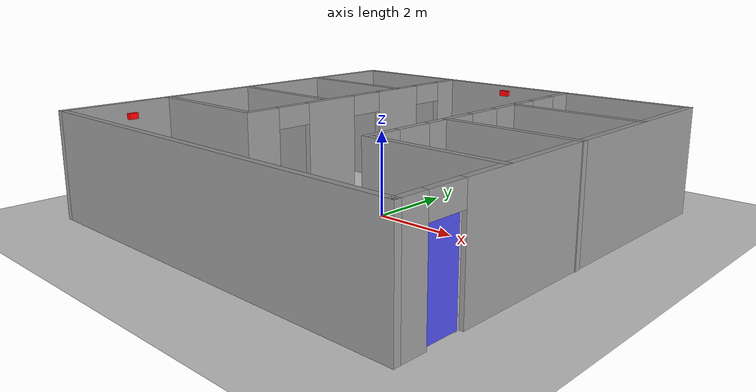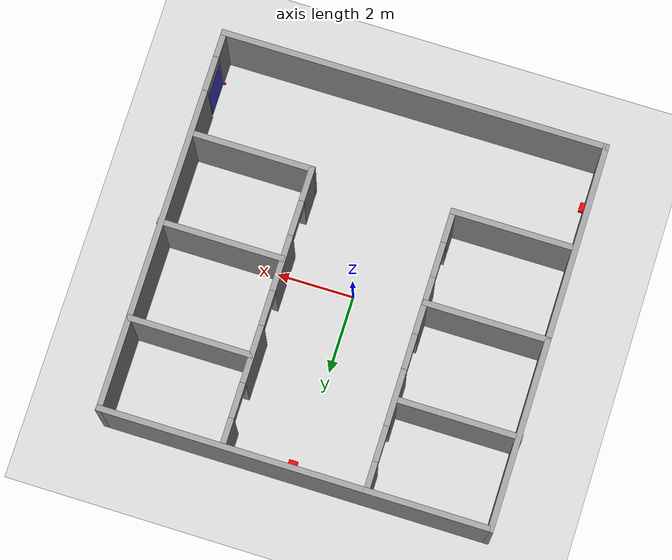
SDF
<sdf version="1.7">
 <world name="default">
  <light name="sun" type="directional">
   <pose>0 0 10 0 -0 0</pose>
   <diffuse>0.8 0.8 0.8 1</diffuse>
   <specular>0.2 0.2 0.2 1</specular>
   <attenuation>
    <range>1000</range>
    <constant>0.9</constant>
    <linear>0.01</linear>
    <quadratic>0.001</quadratic>
   </attenuation>
   <direction>-0.5 0.1 -0.9</direction>
   <spot><inner_angle>0</inner_angle><outer_angle>0</outer_angle><falloff>0</falloff></spot>
  </light>
  <model name="ground_plane">
   <static>1</static>
   <link name="link">
    <collision name="collision">
     <geometry><plane><normal>0 0 1</normal><size>100 100</size></plane></geometry>
     <surface><friction><ode><mu>100</mu><mu2>50</mu2></ode></friction></surface>
    </collision>
    <visual name="visual">
     <cast_shadows>0</cast_shadows>
     <geometry><plane><normal>0 0 1</normal><size>100 100</size></plane></geometry>
     <material>
      <script><uri>file://media/materials/scripts/gazebo.material</uri><name>Gazebo/Grey</name></script>
     </material>
    </visual>
   </link>
  </model>
  <gravity>0 0 -9.8</gravity>
  <magnetic_field>6e-06 2.3e-05 -4.2e-05</magnetic_field>
  <atmosphere type="adiabatic"/>
  <physics type="ode">
   <max_step_size>0.001</max_step_size>
   <real_time_factor>1</real_time_factor>
   <real_time_update_rate>1000</real_time_update_rate>
  </physics>
  <scene><ambient>0.4 0.4 0.4 1</ambient><background>0.7 0.7 0.7 1</background><shadows>1</shadows></scene>
  <spherical_coordinates>
   <surface_model>EARTH_WGS84</surface_model>
   <latitude_deg>0</latitude_deg>
   <longitude_deg>0</longitude_deg>
   <elevation>0</elevation>
   <heading_deg>0</heading_deg>
  </spherical_coordinates>
  <model name="jamarworld_3">
   <pose>-0.04087 -0.041761 0 0 -0 0</pose>
   <link name="Wall_0">
    <collision name="Wall_0_Collision">
     <geometry><box><size>10 0.15 2.5</size></box></geometry>
     <pose>0 0 1.25 0 -0 0</pose>
    </collision>
    <visual name="Wall_0_Visual">
     <pose>0 0 1.25 0 -0 0</pose>
     <geometry><box><size>10 0.15 2.5</size></box></geometry>
     <material>
      <script><uri>file://media/materials/scripts/gazebo.material</uri><name>Gazebo/Grey</name></script>
      <ambient>1 1 1 1</ambient>
     </material>
     <meta><layer>0</layer></meta>
    </visual>
    <pose>-4.92462 0 0 0 -0 1.5708</pose>
   </link>
   <link name="Wall_1">
    <collision name="Wall_1_Collision">
     <geometry><box><size>10 0.15 2.5</size></box></geometry>
     <pose>0 0 1.25 0 -0 0</pose>
    </collision>
    <visual name="Wall_1_Visual">
     <pose>0 0 1.25 0 -0 0</pose>
     <geometry><box><size>10 0.15 2.5</size></box></geometry>
     <material>
      <script><uri>file://media/materials/scripts/gazebo.material</uri><name>Gazebo/Grey</name></script>
      <ambient>1 1 1 1</ambient>
     </material>
     <meta><layer>0</layer></meta>
    </visual>
    <pose>0.000382 4.925 0 0 -0 0</pose>
   </link>
   <link name="Wall_10">
    <collision name="Wall_10_Collision">
     <geometry><box><size>3.25 0.15 2.5</size></box></geometry>
     <pose>0 0 1.25 0 -0 0</pose>
    </collision>
    <visual name="Wall_10_Visual">
     <pose>0 0 1.25 0 -0 0</pose>
     <geometry><box><size>3.25 0.15 2.5</size></box></geometry>
     <material>
      <script><uri>file://media/materials/scripts/gazebo.material</uri><name>Gazebo/Grey</name></script>
      <ambient>1 1 1 1</ambient>
     </material>
     <meta><layer>0</layer></meta>
    </visual>
    <pose>3.35963 -2.24829 0 0 -0 3.14159</pose>
   </link>
   <link name="Wall_11">
    <pose>1.80963 1.30171 0 0 -0 1.5708</pose>
    <visual name="Wall_11_Visual_0">
     <pose>-3.16726 0 1.25 0 -0 0</pose>
     <geometry><box><size>0.915469 0.15 2.5</size></box></geometry>
     <material>
      <script><uri>file://media/materials/scripts/gazebo.material</uri><name>Gazebo/Grey</name></script>
      <ambient>1 1 1 1</ambient>
     </material>
     <meta><layer>0</layer></meta>
    </visual>
    <collision name="Wall_11_Collision_0">
     <geometry><box><size>0.915469 0.15 2.5</size></box></geometry>
     <pose>-3.16726 0 1.25 0 -0 0</pose>
    </collision>
    <visual name="Wall_11_Visual_1">
     <pose>-1.08846 0 1.25 0 -0 0</pose>
     <geometry><box><size>1.44215 0.15 2.5</size></box></geometry>
     <material>
      <script><uri>file://media/materials/scripts/gazebo.material</uri><name>Gazebo/Grey</name></script>
      <ambient>1 1 1 1</ambient>
     </material>
     <meta><layer>0</layer></meta>
    </visual>
    <collision name="Wall_11_Collision_1">
     <geometry><box><size>1.44215 0.15 2.5</size></box></geometry>
     <pose>-1.08846 0 1.25 0 -0 0</pose>
    </collision>
    <visual name="Wall_11_Visual_2">
     <pose>1.2689 0 1.25 0 -0 0</pose>
     <geometry><box><size>1.47256 0.15 2.5</size></box></geometry>
     <material>
      <script><uri>file://media/materials/scripts/gazebo.material</uri><name>Gazebo/Grey</name></script>
      <ambient>1 1 1 1</ambient>
     </material>
     <meta><layer>0</layer></meta>
    </visual>
    <collision name="Wall_11_Collision_2">
     <geometry><box><size>1.47256 0.15 2.5</size></box></geometry>
     <pose>1.2689 0 1.25 0 -0 0</pose>
    </collision>
    <visual name="Wall_11_Visual_3">
     <pose>3.26509 0 1.25 0 -0 0</pose>
     <geometry><box><size>0.719818 0.15 2.5</size></box></geometry>
     <material>
      <script><uri>file://media/materials/scripts/gazebo.material</uri><name>Gazebo/Grey</name></script>
      <ambient>1 1 1 1</ambient>
     </material>
     <meta><layer>0</layer></meta>
    </visual>
    <collision name="Wall_11_Collision_3">
     <geometry><box><size>0.719818 0.15 2.5</size></box></geometry>
     <pose>3.26509 0 1.25 0 -0 0</pose>
    </collision>
    <visual name="Wall_11_Visual_4">
     <pose>-2.25953 0 2.25 0 -0 0</pose>
     <geometry><box><size>0.9 0.15 0.5</size></box></geometry>
     <material>
      <script><uri>file://media/materials/scripts/gazebo.material</uri><name>Gazebo/Grey</name></script>
      <ambient>1 1 1 1</ambient>
     </material>
     <meta><layer>0</layer></meta>
    </visual>
    <collision name="Wall_11_Collision_4">
     <geometry><box><size>0.9 0.15 0.5</size></box></geometry>
     <pose>-2.25953 0 2.25 0 -0 0</pose>
    </collision>
    <visual name="Wall_11_Visual_5">
     <pose>0.082617 0 2.25 0 -0 0</pose>
     <geometry><box><size>0.9 0.15 0.5</size></box></geometry>
     <material>
      <script><uri>file://media/materials/scripts/gazebo.material</uri><name>Gazebo/Grey</name></script>
      <ambient>1 1 1 1</ambient>
     </material>
     <meta><layer>0</layer></meta>
    </visual>
    <collision name="Wall_11_Collision_5">
     <geometry><box><size>0.9 0.15 0.5</size></box></geometry>
     <pose>0.082617 0 2.25 0 -0 0</pose>
    </collision>
    <visual name="Wall_11_Visual_6">
     <pose>2.45518 0 2.25 0 -0 0</pose>
     <geometry><box><size>0.9 0.15 0.5</size></box></geometry>
     <material>
      <script><uri>file://media/materials/scripts/gazebo.material</uri><name>Gazebo/Grey</name></script>
      <ambient>1 1 1 1</ambient>
     </material>
     <meta><layer>0</layer></meta>
    </visual>
    <collision name="Wall_11_Collision_6">
     <geometry><box><size>0.9 0.15 0.5</size></box></geometry>
     <pose>2.45518 0 2.25 0 -0 0</pose>
    </collision>
   </link>
   <link name="Wall_15">
    <collision name="Wall_15_Collision">
     <geometry><box><size>3.25 0.15 2.5</size></box></geometry>
     <pose>0 0 1.25 0 -0 0</pose>
    </collision>
    <visual name="Wall_15_Visual">
     <pose>0 0 1.25 0 -0 0</pose>
     <geometry><box><size>3.25 0.15 2.5</size></box></geometry>
     <material>
      <script><uri>file://media/materials/scripts/gazebo.material</uri><name>Gazebo/Grey</name></script>
      <ambient>1 1 1 1</ambient>
     </material>
     <meta><layer>0</layer></meta>
    </visual>
    <pose>-3.39742 2.59947 0 0 -0 0</pose>
   </link>
   <link name="Wall_17">
    <collision name="Wall_17_Collision">
     <geometry><box><size>3.25 0.15 2.5</size></box></geometry>
     <pose>0 0 1.25 0 -0 0</pose>
    </collision>
    <visual name="Wall_17_Visual">
     <pose>0 0 1.25 0 -0 0</pose>
     <geometry><box><size>3.25 0.15 2.5</size></box></geometry>
     <material>
      <script><uri>file://media/materials/scripts/gazebo.material</uri><name>Gazebo/Grey</name></script>
      <ambient>1 1 1 1</ambient>
     </material>
     <meta><layer>0</layer></meta>
    </visual>
    <pose>-3.37429 0.124498 0 0 -0 0</pose>
   </link>
   <link name="Wall_19">
    <collision name="Wall_19_Collision">
     <geometry><box><size>3.25 0.15 2.5</size></box></geometry>
     <pose>0 0 1.25 0 -0 0</pose>
    </collision>
    <visual name="Wall_19_Visual">
     <pose>0 0 1.25 0 -0 0</pose>
     <geometry><box><size>3.25 0.15 2.5</size></box></geometry>
     <material>
      <script><uri>file://media/materials/scripts/gazebo.material</uri><name>Gazebo/Grey</name></script>
      <ambient>1 1 1 1</ambient>
     </material>
     <meta><layer>0</layer></meta>
    </visual>
    <pose>3.37097 2.60279 0 0 -0 0</pose>
   </link>
   <link name="Wall_2">
    <pose>4.92538 0 0 0 -0 -1.5708</pose>
    <visual name="Wall_2_Visual_0">
     <pose>-0.811587 0 1.25 0 -0 0</pose>
     <geometry><box><size>8.37683 0.15 2.5</size></box></geometry>
     <material>
      <script><uri>file://media/materials/scripts/gazebo.material</uri><name>Gazebo/Grey</name></script>
      <ambient>1 1 1 1</ambient>
     </material>
     <meta><layer>0</layer></meta>
    </visual>
    <collision name="Wall_2_Collision_0">
     <geometry><box><size>8.37683 0.15 2.5</size></box></geometry>
     <pose>-0.811587 0 1.25 0 -0 0</pose>
    </collision>
    <visual name="Wall_2_Visual_1">
     <pose>4.63841 0 1.25 0 -0 0</pose>
     <geometry><box><size>0.723173 0.15 2.5</size></box></geometry>
     <material>
      <script><uri>file://media/materials/scripts/gazebo.material</uri><name>Gazebo/Grey</name></script>
      <ambient>1 1 1 1</ambient>
     </material>
     <meta><layer>0</layer></meta>
    </visual>
    <collision name="Wall_2_Collision_1">
     <geometry><box><size>0.723173 0.15 2.5</size></box></geometry>
     <pose>4.63841 0 1.25 0 -0 0</pose>
    </collision>
    <visual name="Wall_2_Visual_2">
     <pose>3.82683 0 2.25 0 -0 0</pose>
     <geometry><box><size>0.9 0.15 0.5</size></box></geometry>
     <material>
      <script><uri>file://media/materials/scripts/gazebo.material</uri><name>Gazebo/Grey</name></script>
      <ambient>1 1 1 1</ambient>
     </material>
     <meta><layer>0</layer></meta>
    </visual>
    <collision name="Wall_2_Collision_2">
     <geometry><box><size>0.9 0.15 0.5</size></box></geometry>
     <pose>3.82683 0 2.25 0 -0 0</pose>
    </collision>
   </link>
   <link name="Wall_21">
    <collision name="Wall_21_Collision">
     <geometry><box><size>3.25 0.15 2.5</size></box></geometry>
     <pose>0 0 1.25 0 -0 0</pose>
    </collision>
    <visual name="Wall_21_Visual">
     <pose>0 0 1.25 0 -0 0</pose>
     <geometry><box><size>3.25 0.15 2.5</size></box></geometry>
     <material>
      <script><uri>file://media/materials/scripts/gazebo.material</uri><name>Gazebo/Grey</name></script>
      <ambient>1 1 1 1</ambient>
     </material>
     <meta><layer>0</layer></meta>
    </visual>
    <pose>3.39742 0.103264 0 0 -0 0</pose>
   </link>
   <link name="Wall_3">
    <collision name="Wall_3_Collision">
     <geometry><box><size>10 0.15 2.5</size></box></geometry>
     <pose>0 0 1.25 0 -0 0</pose>
    </collision>
    <visual name="Wall_3_Visual">
     <pose>0 0 1.25 0 -0 0</pose>
     <geometry><box><size>10 0.15 2.5</size></box></geometry>
     <material>
      <script><uri>file://media/materials/scripts/gazebo.material</uri><name>Gazebo/Grey</name></script>
      <ambient>1 1 1 1</ambient>
     </material>
     <meta><layer>0</layer></meta>
    </visual>
    <pose>0.000382 -4.925 0 0 -0 3.14159</pose>
   </link>
   <link name="Wall_5">
    <collision name="Wall_5_Collision">
     <geometry><box><size>3.25 0.15 2.5</size></box></geometry>
     <pose>0 0 1.25 0 -0 0</pose>
    </collision>
    <visual name="Wall_5_Visual">
     <pose>0 0 1.25 0 -0 0</pose>
     <geometry><box><size>3.25 0.15 2.5</size></box></geometry>
     <material>
      <script><uri>file://media/materials/scripts/gazebo.material</uri><name>Gazebo/Grey</name></script>
      <ambient>1 1 1 1</ambient>
     </material>
     <meta><layer>0</layer></meta>
    </visual>
    <pose>-3.35935 -2.25446 0 0 -0 0</pose>
   </link>
   <link name="Wall_6">
    <pose>-1.80935 1.29554 0 0 -0 1.5708</pose>
    <visual name="Wall_6_Visual_0">
     <pose>-3.18097 0 1.25 0 -0 0</pose>
     <geometry><box><size>0.888052 0.15 2.5</size></box></geometry>
     <material>
      <script><uri>file://media/materials/scripts/gazebo.material</uri><name>Gazebo/Grey</name></script>
      <ambient>1 1 1 1</ambient>
     </material>
     <meta><layer>0</layer></meta>
    </visual>
    <collision name="Wall_6_Collision_0">
     <geometry><box><size>0.888052 0.15 2.5</size></box></geometry>
     <pose>-3.18097 0 1.25 0 -0 0</pose>
    </collision>
    <visual name="Wall_6_Visual_1">
     <pose>-1.09908 0 1.25 0 -0 0</pose>
     <geometry><box><size>1.47574 0.15 2.5</size></box></geometry>
     <material>
      <script><uri>file://media/materials/scripts/gazebo.material</uri><name>Gazebo/Grey</name></script>
      <ambient>1 1 1 1</ambient>
     </material>
     <meta><layer>0</layer></meta>
    </visual>
    <collision name="Wall_6_Collision_1">
     <geometry><box><size>1.47574 0.15 2.5</size></box></geometry>
     <pose>-1.09908 0 1.25 0 -0 0</pose>
    </collision>
    <visual name="Wall_6_Visual_2">
     <pose>1.26747 0 1.25 0 -0 0</pose>
     <geometry><box><size>1.45736 0.15 2.5</size></box></geometry>
     <material>
      <script><uri>file://media/materials/scripts/gazebo.material</uri><name>Gazebo/Grey</name></script>
      <ambient>1 1 1 1</ambient>
     </material>
     <meta><layer>0</layer></meta>
    </visual>
    <collision name="Wall_6_Collision_2">
     <geometry><box><size>1.45736 0.15 2.5</size></box></geometry>
     <pose>1.26747 0 1.25 0 -0 0</pose>
    </collision>
    <visual name="Wall_6_Visual_3">
     <pose>3.26057 0 1.25 0 -0 0</pose>
     <geometry><box><size>0.728857 0.15 2.5</size></box></geometry>
     <material>
      <script><uri>file://media/materials/scripts/gazebo.material</uri><name>Gazebo/Grey</name></script>
      <ambient>1 1 1 1</ambient>
     </material>
     <meta><layer>0</layer></meta>
    </visual>
    <collision name="Wall_6_Collision_3">
     <geometry><box><size>0.728857 0.15 2.5</size></box></geometry>
     <pose>3.26057 0 1.25 0 -0 0</pose>
    </collision>
    <visual name="Wall_6_Visual_4">
     <pose>-2.28695 0 2.25 0 -0 0</pose>
     <geometry><box><size>0.9 0.15 0.5</size></box></geometry>
     <material>
      <script><uri>file://media/materials/scripts/gazebo.material</uri><name>Gazebo/Grey</name></script>
      <ambient>1 1 1 1</ambient>
     </material>
     <meta><layer>0</layer></meta>
    </visual>
    <collision name="Wall_6_Collision_4">
     <geometry><box><size>0.9 0.15 0.5</size></box></geometry>
     <pose>-2.28695 0 2.25 0 -0 0</pose>
    </collision>
    <visual name="Wall_6_Visual_5">
     <pose>0.088787 0 2.25 0 -0 0</pose>
     <geometry><box><size>0.9 0.15 0.5</size></box></geometry>
     <material>
      <script><uri>file://media/materials/scripts/gazebo.material</uri><name>Gazebo/Grey</name></script>
      <ambient>1 1 1 1</ambient>
     </material>
     <meta><layer>0</layer></meta>
    </visual>
    <collision name="Wall_6_Collision_5">
     <geometry><box><size>0.9 0.15 0.5</size></box></geometry>
     <pose>0.088787 0 2.25 0 -0 0</pose>
    </collision>
    <visual name="Wall_6_Visual_6">
     <pose>2.44614 0 2.25 0 -0 0</pose>
     <geometry><box><size>0.9 0.15 0.5</size></box></geometry>
     <material>
      <script><uri>file://media/materials/scripts/gazebo.material</uri><name>Gazebo/Grey</name></script>
      <ambient>1 1 1 1</ambient>
     </material>
     <meta><layer>0</layer></meta>
    </visual>
    <collision name="Wall_6_Collision_6">
     <geometry><box><size>0.9 0.15 0.5</size></box></geometry>
     <pose>2.44614 0 2.25 0 -0 0</pose>
    </collision>
   </link>
   <static>1</static>
  </model>
  <model name="Camera_1">
   <link name="link_1">
    <inertial>
     <mass>0.00014152</mass>
     <inertia><ixx>8.3e-07</ixx><ixy>0</ixy><ixz>0</ixz><iyy>4e-07</iyy><iyz>0</iyz><izz>7.7e-07</izz></inertia>
    </inertial>
    <gravity>0</gravity>
    <visual name="visual">
     <geometry><box><size>0.119276 0.225925 0.14044</size></box></geometry>
     <material>
      <lighting>1</lighting>
      <script><uri>file://media/materials/scripts/gazebo.material</uri><name>Gazebo/Grey</name></script>
      <shader type="pixel"><normal_map>__default__</normal_map></shader>
      <ambient>1 0 0 1</ambient>
      <diffuse>0.7 0.7 0.7 1</diffuse>
      <specular>0.01 0.01 0.01 1</specular>
      <emissive>0 0 0 1</emissive>
     </material>
    </visual>
    <collision name="collision">
     <geometry><box><size>0.119276 0.225925 0.14044</size></box></geometry>
     <surface>
      <friction>
       <ode><mu>1</mu><mu2>1</mu2><fdir1>0 0 0</fdir1><slip1>0</slip1><slip2>0</slip2></ode>
       <torsional>
        <coefficient>1</coefficient>
        <patch_radius>0</patch_radius>
        <surface_radius>0</surface_radius>
        <use_patch_radius>1</use_patch_radius>
        <ode><slip>0</slip></ode>
       </torsional>
      </friction>
      <bounce><restitution_coefficient>0</restitution_coefficient><threshold>1e+06</threshold></bounce>
      <contact>
       <collide_without_contact>0</collide_without_contact>
       <collide_without_contact_bitmask>1</collide_without_contact_bitmask>
       <collide_bitmask>1</collide_bitmask>
       <ode>
        <soft_cfm>0</soft_cfm>
        <soft_erp>0.2</soft_erp>
        <kp>1e+13</kp>
        <kd>1</kd>
        <max_vel>0.01</max_vel>
        <min_depth>0</min_depth>
       </ode>
       <bullet>
        <split_impulse>1</split_impulse>
        <split_impulse_penetration_threshold>-0.01</split_impulse_penetration_threshold>
        <soft_cfm>0</soft_cfm>
        <soft_erp>0.2</soft_erp>
        <kp>1e+13</kp>
        <kd>1</kd>
       </bullet>
      </contact>
     </surface>
    </collision>
   </link>
   <static>0</static>
   <pose>-4.82195 -3.38948 2.18375 0 -0 0</pose>
  </model>
  <model name="Camera_2">
   <link name="link_1">
    <inertial>
     <mass>0.00014152</mass>
     <inertia><ixx>8.3e-07</ixx><ixy>0</ixy><ixz>0</ixz><iyy>4e-07</iyy><iyz>0</iyz><izz>7.7e-07</izz></inertia>
    </inertial>
    <gravity>0</gravity>
    <visual name="visual">
     <geometry><box><size>0.119276 0.225925 0.14044</size></box></geometry>
     <material>
      <lighting>1</lighting>
      <script><uri>file://media/materials/scripts/gazebo.material</uri><name>Gazebo/Grey</name></script>
      <shader type="pixel"><normal_map>__default__</normal_map></shader>
      <ambient>1 0 0 1</ambient>
      <diffuse>0.7 0.7 0.7 1</diffuse>
      <specular>0.01 0.01 0.01 1</specular>
      <emissive>0 0 0 1</emissive>
     </material>
    </visual>
    <collision name="collision">
     <geometry><box><size>0.119276 0.225925 0.14044</size></box></geometry>
     <surface>
      <friction>
       <ode><mu>1</mu><mu2>1</mu2><fdir1>0 0 0</fdir1><slip1>0</slip1><slip2>0</slip2></ode>
       <torsional>
        <coefficient>1</coefficient>
        <patch_radius>0</patch_radius>
        <surface_radius>0</surface_radius>
        <use_patch_radius>1</use_patch_radius>
        <ode><slip>0</slip></ode>
       </torsional>
      </friction>
      <bounce><restitution_coefficient>0</restitution_coefficient><threshold>1e+06</threshold></bounce>
      <contact>
       <collide_without_contact>0</collide_without_contact>
       <collide_without_contact_bitmask>1</collide_without_contact_bitmask>
       <collide_bitmask>1</collide_bitmask>
       <ode>
        <soft_cfm>0</soft_cfm>
        <soft_erp>0.2</soft_erp>
        <kp>1e+13</kp>
        <kd>1</kd>
        <max_vel>0.01</max_vel>
        <min_depth>0</min_depth>
       </ode>
       <bullet>
        <split_impulse>1</split_impulse>
        <split_impulse_penetration_threshold>-0.01</split_impulse_penetration_threshold>
        <soft_cfm>0</soft_cfm>
        <soft_erp>0.2</soft_erp>
        <kp>1e+13</kp>
        <kd>1</kd>
       </bullet>
      </contact>
     </surface>
    </collision>
   </link>
   <static>1</static>
   <pose>0.028857 4.75 2.32386 0.004773 -0.048683 -1.57098</pose>
  </model>
  <model name="Lidar_7">
   <link name="link_1">
    <inertial>
     <mass>0.00014111</mass>
     <inertia><ixx>7e-08</ixx><ixy>0</ixy><ixz>0</ixz><iyy>7e-08</iyy><iyz>0</iyz><izz>6e-08</izz></inertia>
    </inertial>
    <visual name="visual">
     <geometry><box><size>0.048286 0.048861 0.059852</size></box></geometry>
     <material>
      <lighting>1</lighting>
      <script><uri>file://media/materials/scripts/gazebo.material</uri><name>Gazebo/Grey</name></script>
      <shader type="pixel"><normal_map>__default__</normal_map></shader>
      <ambient>1 0 0 1</ambient>
      <diffuse>0.7 0.7 0.7 1</diffuse>
      <specular>0.01 0.01 0.01 1</specular>
      <emissive>0 0 0 1</emissive>
     </material>
    </visual>
    <collision name="collision">
     <geometry><box><size>0.048286 0.048861 0.059852</size></box></geometry>
     <surface>
      <friction>
       <ode><mu>1</mu><mu2>1</mu2><fdir1>0 0 0</fdir1><slip1>0</slip1><slip2>0</slip2></ode>
       <torsional>
        <coefficient>1</coefficient>
        <patch_radius>0</patch_radius>
        <surface_radius>0</surface_radius>
        <use_patch_radius>1</use_patch_radius>
        <ode><slip>0</slip></ode>
       </torsional>
      </friction>
      <bounce><restitution_coefficient>0</restitution_coefficient><threshold>1e+06</threshold></bounce>
      <contact>
       <collide_without_contact>0</collide_without_contact>
       <collide_without_contact_bitmask>1</collide_without_contact_bitmask>
       <collide_bitmask>1</collide_bitmask>
       <ode>
        <soft_cfm>0</soft_cfm>
        <soft_erp>0.2</soft_erp>
        <kp>1e+13</kp>
        <kd>1</kd>
        <max_vel>0.01</max_vel>
        <min_depth>0</min_depth>
       </ode>
       <bullet>
        <split_impulse>1</split_impulse>
        <split_impulse_penetration_threshold>-0.01</split_impulse_penetration_threshold>
        <soft_cfm>0</soft_cfm>
        <soft_erp>0.2</soft_erp>
        <kp>1e+13</kp>
        <kd>1</kd>
       </bullet>
      </contact>
     </surface>
    </collision>
   </link>
   <static>0</static>
   <pose>4.78458 -4.35902 0.029927 -2.6e-05 -2e-06 1.59045</pose>
  </model>
  <model name="door_7">
   <link name="door_frame">
    <pose>0.638166 -0 1.23607 0 -0 0</pose>
    <kinematic>1</kinematic>
    <inertial>
     <inertia>
      <ixx>0.0406922</ixx>
      <ixy>0</ixy>
      <ixz>0</ixz>
      <iyy>0.0406275</iyy>
      <iyz>0</iyz>
      <izz>0.000247933</izz>
     </inertia>
     <mass>0.109926</mass>
    </inertial>
    <visual name="frame_visual">
     <geometry><box><size>0.1 0.013063 2.10359</size></box></geometry>
     <material>
      <ambient>0.7 0.7 0.7 1</ambient>
      <diffuse>0.8 0.8 0.8 1</diffuse>
      <shader type="pixel"/>
      <script><name>ModelPreview_2::door_frame::frame_visual_MATERIAL_</name><uri>__default__</uri></script>
     </material>
    </visual>
    <collision name="frame_collision">
     <geometry><box><size>0.1 0.130635 2.10359</size></box></geometry>
     <surface>
      <friction>
       <ode><mu>1</mu><mu2>1</mu2><fdir1>0 0 0</fdir1><slip1>0</slip1><slip2>0</slip2></ode>
       <torsional>
        <coefficient>1</coefficient>
        <patch_radius>0</patch_radius>
        <surface_radius>0</surface_radius>
        <use_patch_radius>1</use_patch_radius>
        <ode><slip>0</slip></ode>
       </torsional>
      </friction>
      <bounce><restitution_coefficient>0</restitution_coefficient><threshold>1e+06</threshold></bounce>
      <contact>
       <collide_without_contact>0</collide_without_contact>
       <collide_without_contact_bitmask>1</collide_without_contact_bitmask>
       <collide_bitmask>1</collide_bitmask>
       <ode>
        <soft_cfm>0</soft_cfm>
        <soft_erp>0.2</soft_erp>
        <kp>1e+13</kp>
        <kd>1</kd>
        <max_vel>0.01</max_vel>
        <min_depth>0</min_depth>
       </ode>
       <bullet>
        <split_impulse>1</split_impulse>
        <split_impulse_penetration_threshold>-0.01</split_impulse_penetration_threshold>
        <soft_cfm>0</soft_cfm>
        <soft_erp>0.2</soft_erp>
        <kp>1e+13</kp>
        <kd>1</kd>
       </bullet>
      </contact>
     </surface>
    </collision>
   </link>
   <link name="door">
    <kinematic>1</kinematic>
    <pose>0.19327 -0 1.25 0 -0 0</pose>
    <inertial>
     <inertia>
      <ixx>0.516949</ixx>
      <ixy>0</ixy>
      <ixz>0</ixz>
      <iyy>0.605997</iyy>
      <iyz>0</iyz>
      <izz>0.089646</izz>
     </inertia>
     <mass>1.43618</mass>
    </inertial>
    <visual name="door_visual">
     <geometry><box><size>0.864023 0.05 2.0777</size></box></geometry>
     <material>
      <ambient>0.2 0.2 0.8 1</ambient>
      <diffuse>0.3 0.3 0.9 1</diffuse>
      <shader type="pixel"/>
      <script><name>ModelPreview_2::door::door_visual_MATERIAL_</name><uri>__default__</uri></script>
     </material>
    </visual>
    <collision name="door_collision">
     <geometry><box><size>0.864023 0.05 2.0777</size></box></geometry>
     <surface>
      <friction>
       <ode><mu>1</mu><mu2>1</mu2><fdir1>0 0 0</fdir1><slip1>0</slip1><slip2>0</slip2></ode>
       <torsional>
        <coefficient>1</coefficient>
        <patch_radius>0</patch_radius>
        <surface_radius>0</surface_radius>
        <use_patch_radius>1</use_patch_radius>
        <ode><slip>0</slip></ode>
       </torsional>
      </friction>
      <bounce><restitution_coefficient>0</restitution_coefficient><threshold>1e+06</threshold></bounce>
      <contact>
       <collide_without_contact>0</collide_without_contact>
       <collide_without_contact_bitmask>1</collide_without_contact_bitmask>
       <collide_bitmask>1</collide_bitmask>
       <ode>
        <soft_cfm>0</soft_cfm>
        <soft_erp>0.2</soft_erp>
        <kp>1e+13</kp>
        <kd>1</kd>
        <max_vel>0.01</max_vel>
        <min_depth>0</min_depth>
       </ode>
       <bullet>
        <split_impulse>1</split_impulse>
        <split_impulse_penetration_threshold>-0.01</split_impulse_penetration_threshold>
        <soft_cfm>0</soft_cfm>
        <soft_erp>0.2</soft_erp>
        <kp>1e+13</kp>
        <kd>1</kd>
       </bullet>
      </contact>
     </surface>
    </collision>
   </link>
   <joint name="door_joint" type="prismatic">
    <parent>door_frame</parent>
    <child>door</child>
    <axis>
     <xyz>1 0 0</xyz>
     <limit><lower>0</lower><upper>0.5</upper><effort>-1</effort><velocity>-1</velocity></limit>
     <dynamics>
      <spring_reference>0</spring_reference>
      <spring_stiffness>0</spring_stiffness>
      <damping>0</damping>
      <friction>0</friction>
     </dynamics>
    </axis>
    <physics>
     <ode><limit><cfm>0</cfm><erp>0.2</erp></limit><suspension><cfm>0</cfm><erp>0.2</erp></suspension></ode>
    </physics>
   </joint>
   <static>0</static>
   <plugin name="door_control_plugin" filename="libdoor_control_plugin.so">
    <door_joint>door_joint</door_joint>
    <speed>1.0</speed>
    <open_target>1.0</open_target>
    <close_target>0.0</close_target>
   </plugin>
   <pose>4.85322 -4.10452 -0.197753 0 -0 1.57</pose>
  </model>
 </world>
</sdf>
